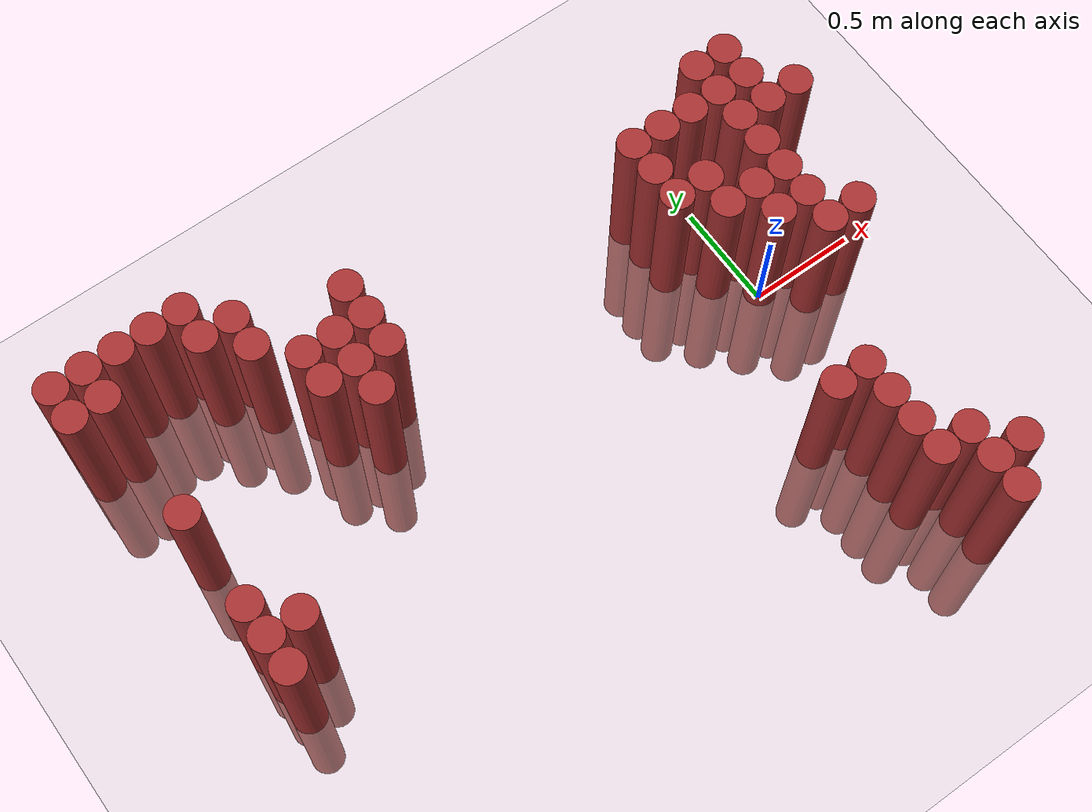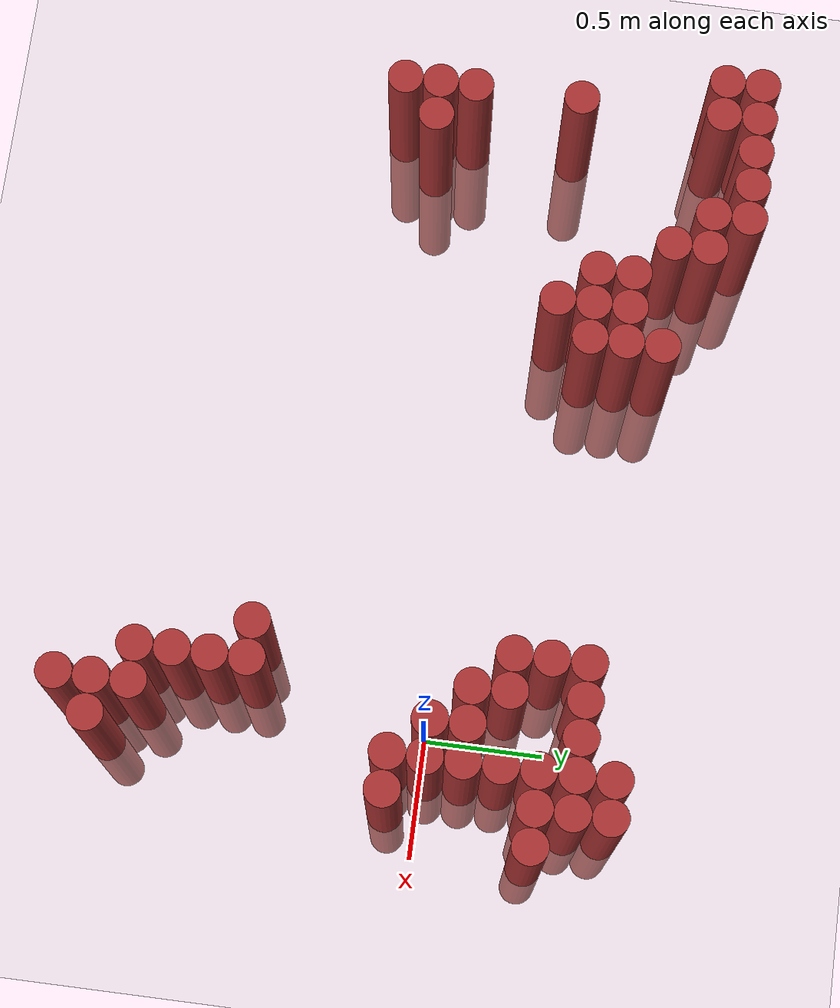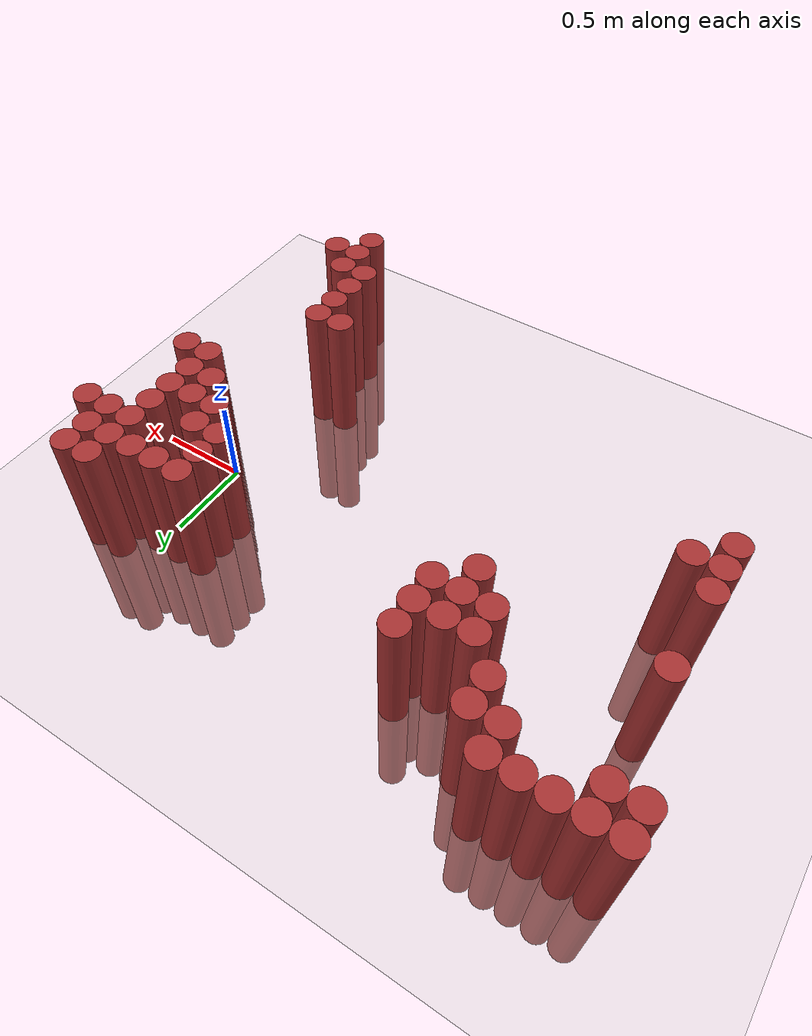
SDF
<sdf version="1.6">
 <world name="default">
  <model name="ground_plane">
   <static>1</static>
   <link name="link">
    <collision name="collision">
     <geometry><plane><normal>0 0 1</normal><size>100 100</size></plane></geometry>
     <surface><friction><ode><mu>100</mu><mu2>50</mu2></ode></friction></surface>
    </collision>
    <visual name="visual">
     <cast_shadows>0</cast_shadows>
     <geometry><plane><normal>0 0 1</normal><size>100 100</size></plane></geometry>
     <material>
      <script><uri>file://media/materials/scripts/gazebo.material</uri><name>Gazebo/Grey</name></script>
     </material>
    </visual>
   </link>
  </model>
  <model name="unit_cylinder_310">
   <static>1</static>
   <pose>-2.825000 0.925000 0.000000 0.000000 0.000000 0.000000</pose>
   <link name="link">
    <inertial>
     <mass>1</mass>
     <inertia><ixx>0.145833</ixx><ixy>0</ixy><ixz>0</ixz><iyy>0.145833</iyy><iyz>0</iyz><izz>0.125</izz></inertia>
    </inertial>
    <collision name="collision">
     <geometry><cylinder><radius>0.075000</radius><length>1.5</length></cylinder></geometry>
    </collision>
    <visual name="visual">
     <geometry><cylinder><radius>0.075000</radius><length>1.5</length></cylinder></geometry>
     <material>
      <ambient>0.648000 0.192000 0.192000 1</ambient>
      <diffuse>0.648000 0.192000 0.192000 1</diffuse>
     </material>
     <material>
      <script><name>Gazebo/Grey</name><uri>file://media/materials/scripts/gazebo.material</uri></script>
     </material>
    </visual>
   </link>
  </model>
  <model name="unit_cylinder_311">
   <static>1</static>
   <pose>-2.825000 1.075000 0.000000 0.000000 0.000000 0.000000</pose>
   <link name="link">
    <inertial>
     <mass>1</mass>
     <inertia><ixx>0.145833</ixx><ixy>0</ixy><ixz>0</ixz><iyy>0.145833</iyy><iyz>0</iyz><izz>0.125</izz></inertia>
    </inertial>
    <collision name="collision">
     <geometry><cylinder><radius>0.075000</radius><length>1.5</length></cylinder></geometry>
    </collision>
    <visual name="visual">
     <geometry><cylinder><radius>0.075000</radius><length>1.5</length></cylinder></geometry>
     <material>
      <ambient>0.648000 0.192000 0.192000 1</ambient>
      <diffuse>0.648000 0.192000 0.192000 1</diffuse>
     </material>
     <material>
      <script><name>Gazebo/Grey</name><uri>file://media/materials/scripts/gazebo.material</uri></script>
     </material>
    </visual>
   </link>
  </model>
  <model name="unit_cylinder_313">
   <static>1</static>
   <pose>-2.675000 -0.425000 0.000000 0.000000 0.000000 0.000000</pose>
   <link name="link">
    <inertial>
     <mass>1</mass>
     <inertia><ixx>0.145833</ixx><ixy>0</ixy><ixz>0</ixz><iyy>0.145833</iyy><iyz>0</iyz><izz>0.125</izz></inertia>
    </inertial>
    <collision name="collision">
     <geometry><cylinder><radius>0.075000</radius><length>1.5</length></cylinder></geometry>
    </collision>
    <visual name="visual">
     <geometry><cylinder><radius>0.075000</radius><length>1.5</length></cylinder></geometry>
     <material>
      <ambient>0.648000 0.192000 0.192000 1</ambient>
      <diffuse>0.648000 0.192000 0.192000 1</diffuse>
     </material>
     <material>
      <script><name>Gazebo/Grey</name><uri>file://media/materials/scripts/gazebo.material</uri></script>
     </material>
    </visual>
   </link>
  </model>
  <model name="unit_cylinder_314">
   <static>1</static>
   <pose>-2.675000 -0.275000 0.000000 0.000000 0.000000 0.000000</pose>
   <link name="link">
    <inertial>
     <mass>1</mass>
     <inertia><ixx>0.145833</ixx><ixy>0</ixy><ixz>0</ixz><iyy>0.145833</iyy><iyz>0</iyz><izz>0.125</izz></inertia>
    </inertial>
    <collision name="collision">
     <geometry><cylinder><radius>0.075000</radius><length>1.5</length></cylinder></geometry>
    </collision>
    <visual name="visual">
     <geometry><cylinder><radius>0.075000</radius><length>1.5</length></cylinder></geometry>
     <material>
      <ambient>0.648000 0.192000 0.192000 1</ambient>
      <diffuse>0.648000 0.192000 0.192000 1</diffuse>
     </material>
     <material>
      <script><name>Gazebo/Grey</name><uri>file://media/materials/scripts/gazebo.material</uri></script>
     </material>
    </visual>
   </link>
  </model>
  <model name="unit_cylinder_315">
   <static>1</static>
   <pose>-2.675000 -0.125000 0.000000 0.000000 0.000000 0.000000</pose>
   <link name="link">
    <inertial>
     <mass>1</mass>
     <inertia><ixx>0.145833</ixx><ixy>0</ixy><ixz>0</ixz><iyy>0.145833</iyy><iyz>0</iyz><izz>0.125</izz></inertia>
    </inertial>
    <collision name="collision">
     <geometry><cylinder><radius>0.075000</radius><length>1.5</length></cylinder></geometry>
    </collision>
    <visual name="visual">
     <geometry><cylinder><radius>0.075000</radius><length>1.5</length></cylinder></geometry>
     <material>
      <ambient>0.648000 0.192000 0.192000 1</ambient>
      <diffuse>0.648000 0.192000 0.192000 1</diffuse>
     </material>
     <material>
      <script><name>Gazebo/Grey</name><uri>file://media/materials/scripts/gazebo.material</uri></script>
     </material>
    </visual>
   </link>
  </model>
  <model name="unit_cylinder_316">
   <static>1</static>
   <pose>-2.675000 0.325000 0.000000 0.000000 0.000000 0.000000</pose>
   <link name="link">
    <inertial>
     <mass>1</mass>
     <inertia><ixx>0.145833</ixx><ixy>0</ixy><ixz>0</ixz><iyy>0.145833</iyy><iyz>0</iyz><izz>0.125</izz></inertia>
    </inertial>
    <collision name="collision">
     <geometry><cylinder><radius>0.075000</radius><length>1.5</length></cylinder></geometry>
    </collision>
    <visual name="visual">
     <geometry><cylinder><radius>0.075000</radius><length>1.5</length></cylinder></geometry>
     <material>
      <ambient>0.648000 0.192000 0.192000 1</ambient>
      <diffuse>0.648000 0.192000 0.192000 1</diffuse>
     </material>
     <material>
      <script><name>Gazebo/Grey</name><uri>file://media/materials/scripts/gazebo.material</uri></script>
     </material>
    </visual>
   </link>
  </model>
  <model name="unit_cylinder_317">
   <static>1</static>
   <pose>-2.675000 0.925000 0.000000 0.000000 0.000000 0.000000</pose>
   <link name="link">
    <inertial>
     <mass>1</mass>
     <inertia><ixx>0.145833</ixx><ixy>0</ixy><ixz>0</ixz><iyy>0.145833</iyy><iyz>0</iyz><izz>0.125</izz></inertia>
    </inertial>
    <collision name="collision">
     <geometry><cylinder><radius>0.075000</radius><length>1.5</length></cylinder></geometry>
    </collision>
    <visual name="visual">
     <geometry><cylinder><radius>0.075000</radius><length>1.5</length></cylinder></geometry>
     <material>
      <ambient>0.648000 0.192000 0.192000 1</ambient>
      <diffuse>0.648000 0.192000 0.192000 1</diffuse>
     </material>
     <material>
      <script><name>Gazebo/Grey</name><uri>file://media/materials/scripts/gazebo.material</uri></script>
     </material>
    </visual>
   </link>
  </model>
  <model name="unit_cylinder_318">
   <static>1</static>
   <pose>-2.675000 1.075000 0.000000 0.000000 0.000000 0.000000</pose>
   <link name="link">
    <inertial>
     <mass>1</mass>
     <inertia><ixx>0.145833</ixx><ixy>0</ixy><ixz>0</ixz><iyy>0.145833</iyy><iyz>0</iyz><izz>0.125</izz></inertia>
    </inertial>
    <collision name="collision">
     <geometry><cylinder><radius>0.075000</radius><length>1.5</length></cylinder></geometry>
    </collision>
    <visual name="visual">
     <geometry><cylinder><radius>0.075000</radius><length>1.5</length></cylinder></geometry>
     <material>
      <ambient>0.648000 0.192000 0.192000 1</ambient>
      <diffuse>0.648000 0.192000 0.192000 1</diffuse>
     </material>
     <material>
      <script><name>Gazebo/Grey</name><uri>file://media/materials/scripts/gazebo.material</uri></script>
     </material>
    </visual>
   </link>
  </model>
  <model name="unit_cylinder_324">
   <static>1</static>
   <pose>-2.525000 -0.275000 0.000000 0.000000 0.000000 0.000000</pose>
   <link name="link">
    <inertial>
     <mass>1</mass>
     <inertia><ixx>0.145833</ixx><ixy>0</ixy><ixz>0</ixz><iyy>0.145833</iyy><iyz>0</iyz><izz>0.125</izz></inertia>
    </inertial>
    <collision name="collision">
     <geometry><cylinder><radius>0.075000</radius><length>1.5</length></cylinder></geometry>
    </collision>
    <visual name="visual">
     <geometry><cylinder><radius>0.075000</radius><length>1.5</length></cylinder></geometry>
     <material>
      <ambient>0.648000 0.192000 0.192000 1</ambient>
      <diffuse>0.648000 0.192000 0.192000 1</diffuse>
     </material>
     <material>
      <script><name>Gazebo/Grey</name><uri>file://media/materials/scripts/gazebo.material</uri></script>
     </material>
    </visual>
   </link>
  </model>
  <model name="unit_cylinder_325">
   <static>1</static>
   <pose>-2.525000 1.075000 0.000000 0.000000 0.000000 0.000000</pose>
   <link name="link">
    <inertial>
     <mass>1</mass>
     <inertia><ixx>0.145833</ixx><ixy>0</ixy><ixz>0</ixz><iyy>0.145833</iyy><iyz>0</iyz><izz>0.125</izz></inertia>
    </inertial>
    <collision name="collision">
     <geometry><cylinder><radius>0.075000</radius><length>1.5</length></cylinder></geometry>
    </collision>
    <visual name="visual">
     <geometry><cylinder><radius>0.075000</radius><length>1.5</length></cylinder></geometry>
     <material>
      <ambient>0.648000 0.192000 0.192000 1</ambient>
      <diffuse>0.648000 0.192000 0.192000 1</diffuse>
     </material>
     <material>
      <script><name>Gazebo/Grey</name><uri>file://media/materials/scripts/gazebo.material</uri></script>
     </material>
    </visual>
   </link>
  </model>
  <model name="unit_cylinder_333">
   <static>1</static>
   <pose>-2.375000 1.075000 0.000000 0.000000 0.000000 0.000000</pose>
   <link name="link">
    <inertial>
     <mass>1</mass>
     <inertia><ixx>0.145833</ixx><ixy>0</ixy><ixz>0</ixz><iyy>0.145833</iyy><iyz>0</iyz><izz>0.125</izz></inertia>
    </inertial>
    <collision name="collision">
     <geometry><cylinder><radius>0.075000</radius><length>1.5</length></cylinder></geometry>
    </collision>
    <visual name="visual">
     <geometry><cylinder><radius>0.075000</radius><length>1.5</length></cylinder></geometry>
     <material>
      <ambient>0.648000 0.192000 0.192000 1</ambient>
      <diffuse>0.648000 0.192000 0.192000 1</diffuse>
     </material>
     <material>
      <script><name>Gazebo/Grey</name><uri>file://media/materials/scripts/gazebo.material</uri></script>
     </material>
    </visual>
   </link>
  </model>
  <model name="unit_cylinder_340">
   <static>1</static>
   <pose>-2.225000 0.925000 0.000000 0.000000 0.000000 0.000000</pose>
   <link name="link">
    <inertial>
     <mass>1</mass>
     <inertia><ixx>0.145833</ixx><ixy>0</ixy><ixz>0</ixz><iyy>0.145833</iyy><iyz>0</iyz><izz>0.125</izz></inertia>
    </inertial>
    <collision name="collision">
     <geometry><cylinder><radius>0.075000</radius><length>1.5</length></cylinder></geometry>
    </collision>
    <visual name="visual">
     <geometry><cylinder><radius>0.075000</radius><length>1.5</length></cylinder></geometry>
     <material>
      <ambient>0.648000 0.192000 0.192000 1</ambient>
      <diffuse>0.648000 0.192000 0.192000 1</diffuse>
     </material>
     <material>
      <script><name>Gazebo/Grey</name><uri>file://media/materials/scripts/gazebo.material</uri></script>
     </material>
    </visual>
   </link>
  </model>
  <model name="unit_cylinder_341">
   <static>1</static>
   <pose>-2.225000 1.075000 0.000000 0.000000 0.000000 0.000000</pose>
   <link name="link">
    <inertial>
     <mass>1</mass>
     <inertia><ixx>0.145833</ixx><ixy>0</ixy><ixz>0</ixz><iyy>0.145833</iyy><iyz>0</iyz><izz>0.125</izz></inertia>
    </inertial>
    <collision name="collision">
     <geometry><cylinder><radius>0.075000</radius><length>1.5</length></cylinder></geometry>
    </collision>
    <visual name="visual">
     <geometry><cylinder><radius>0.075000</radius><length>1.5</length></cylinder></geometry>
     <material>
      <ambient>0.648000 0.192000 0.192000 1</ambient>
      <diffuse>0.648000 0.192000 0.192000 1</diffuse>
     </material>
     <material>
      <script><name>Gazebo/Grey</name><uri>file://media/materials/scripts/gazebo.material</uri></script>
     </material>
    </visual>
   </link>
  </model>
  <model name="unit_cylinder_343">
   <static>1</static>
   <pose>-2.075000 0.775000 0.000000 0.000000 0.000000 0.000000</pose>
   <link name="link">
    <inertial>
     <mass>1</mass>
     <inertia><ixx>0.145833</ixx><ixy>0</ixy><ixz>0</ixz><iyy>0.145833</iyy><iyz>0</iyz><izz>0.125</izz></inertia>
    </inertial>
    <collision name="collision">
     <geometry><cylinder><radius>0.075000</radius><length>1.5</length></cylinder></geometry>
    </collision>
    <visual name="visual">
     <geometry><cylinder><radius>0.075000</radius><length>1.5</length></cylinder></geometry>
     <material>
      <ambient>0.648000 0.192000 0.192000 1</ambient>
      <diffuse>0.648000 0.192000 0.192000 1</diffuse>
     </material>
     <material>
      <script><name>Gazebo/Grey</name><uri>file://media/materials/scripts/gazebo.material</uri></script>
     </material>
    </visual>
   </link>
  </model>
  <model name="unit_cylinder_344">
   <static>1</static>
   <pose>-2.075000 0.925000 0.000000 0.000000 0.000000 0.000000</pose>
   <link name="link">
    <inertial>
     <mass>1</mass>
     <inertia><ixx>0.145833</ixx><ixy>0</ixy><ixz>0</ixz><iyy>0.145833</iyy><iyz>0</iyz><izz>0.125</izz></inertia>
    </inertial>
    <collision name="collision">
     <geometry><cylinder><radius>0.075000</radius><length>1.5</length></cylinder></geometry>
    </collision>
    <visual name="visual">
     <geometry><cylinder><radius>0.075000</radius><length>1.5</length></cylinder></geometry>
     <material>
      <ambient>0.648000 0.192000 0.192000 1</ambient>
      <diffuse>0.648000 0.192000 0.192000 1</diffuse>
     </material>
     <material>
      <script><name>Gazebo/Grey</name><uri>file://media/materials/scripts/gazebo.material</uri></script>
     </material>
    </visual>
   </link>
  </model>
  <model name="unit_cylinder_345">
   <static>1</static>
   <pose>-1.925000 0.475000 0.000000 0.000000 0.000000 0.000000</pose>
   <link name="link">
    <inertial>
     <mass>1</mass>
     <inertia><ixx>0.145833</ixx><ixy>0</ixy><ixz>0</ixz><iyy>0.145833</iyy><iyz>0</iyz><izz>0.125</izz></inertia>
    </inertial>
    <collision name="collision">
     <geometry><cylinder><radius>0.075000</radius><length>1.5</length></cylinder></geometry>
    </collision>
    <visual name="visual">
     <geometry><cylinder><radius>0.075000</radius><length>1.5</length></cylinder></geometry>
     <material>
      <ambient>0.648000 0.192000 0.192000 1</ambient>
      <diffuse>0.648000 0.192000 0.192000 1</diffuse>
     </material>
     <material>
      <script><name>Gazebo/Grey</name><uri>file://media/materials/scripts/gazebo.material</uri></script>
     </material>
    </visual>
   </link>
  </model>
  <model name="unit_cylinder_346">
   <static>1</static>
   <pose>-1.925000 0.625000 0.000000 0.000000 0.000000 0.000000</pose>
   <link name="link">
    <inertial>
     <mass>1</mass>
     <inertia><ixx>0.145833</ixx><ixy>0</ixy><ixz>0</ixz><iyy>0.145833</iyy><iyz>0</iyz><izz>0.125</izz></inertia>
    </inertial>
    <collision name="collision">
     <geometry><cylinder><radius>0.075000</radius><length>1.5</length></cylinder></geometry>
    </collision>
    <visual name="visual">
     <geometry><cylinder><radius>0.075000</radius><length>1.5</length></cylinder></geometry>
     <material>
      <ambient>0.648000 0.192000 0.192000 1</ambient>
      <diffuse>0.648000 0.192000 0.192000 1</diffuse>
     </material>
     <material>
      <script><name>Gazebo/Grey</name><uri>file://media/materials/scripts/gazebo.material</uri></script>
     </material>
    </visual>
   </link>
  </model>
  <model name="unit_cylinder_347">
   <static>1</static>
   <pose>-1.775000 0.325000 0.000000 0.000000 0.000000 0.000000</pose>
   <link name="link">
    <inertial>
     <mass>1</mass>
     <inertia><ixx>0.145833</ixx><ixy>0</ixy><ixz>0</ixz><iyy>0.145833</iyy><iyz>0</iyz><izz>0.125</izz></inertia>
    </inertial>
    <collision name="collision">
     <geometry><cylinder><radius>0.075000</radius><length>1.5</length></cylinder></geometry>
    </collision>
    <visual name="visual">
     <geometry><cylinder><radius>0.075000</radius><length>1.5</length></cylinder></geometry>
     <material>
      <ambient>0.648000 0.192000 0.192000 1</ambient>
      <diffuse>0.648000 0.192000 0.192000 1</diffuse>
     </material>
     <material>
      <script><name>Gazebo/Grey</name><uri>file://media/materials/scripts/gazebo.material</uri></script>
     </material>
    </visual>
   </link>
  </model>
  <model name="unit_cylinder_348">
   <static>1</static>
   <pose>-1.775000 0.475000 0.000000 0.000000 0.000000 0.000000</pose>
   <link name="link">
    <inertial>
     <mass>1</mass>
     <inertia><ixx>0.145833</ixx><ixy>0</ixy><ixz>0</ixz><iyy>0.145833</iyy><iyz>0</iyz><izz>0.125</izz></inertia>
    </inertial>
    <collision name="collision">
     <geometry><cylinder><radius>0.075000</radius><length>1.5</length></cylinder></geometry>
    </collision>
    <visual name="visual">
     <geometry><cylinder><radius>0.075000</radius><length>1.5</length></cylinder></geometry>
     <material>
      <ambient>0.648000 0.192000 0.192000 1</ambient>
      <diffuse>0.648000 0.192000 0.192000 1</diffuse>
     </material>
     <material>
      <script><name>Gazebo/Grey</name><uri>file://media/materials/scripts/gazebo.material</uri></script>
     </material>
    </visual>
   </link>
  </model>
  <model name="unit_cylinder_349">
   <static>1</static>
   <pose>-1.775000 0.625000 0.000000 0.000000 0.000000 0.000000</pose>
   <link name="link">
    <inertial>
     <mass>1</mass>
     <inertia><ixx>0.145833</ixx><ixy>0</ixy><ixz>0</ixz><iyy>0.145833</iyy><iyz>0</iyz><izz>0.125</izz></inertia>
    </inertial>
    <collision name="collision">
     <geometry><cylinder><radius>0.075000</radius><length>1.5</length></cylinder></geometry>
    </collision>
    <visual name="visual">
     <geometry><cylinder><radius>0.075000</radius><length>1.5</length></cylinder></geometry>
     <material>
      <ambient>0.648000 0.192000 0.192000 1</ambient>
      <diffuse>0.648000 0.192000 0.192000 1</diffuse>
     </material>
     <material>
      <script><name>Gazebo/Grey</name><uri>file://media/materials/scripts/gazebo.material</uri></script>
     </material>
    </visual>
   </link>
  </model>
  <model name="unit_cylinder_350">
   <static>1</static>
   <pose>-1.625000 0.475000 0.000000 0.000000 0.000000 0.000000</pose>
   <link name="link">
    <inertial>
     <mass>1</mass>
     <inertia><ixx>0.145833</ixx><ixy>0</ixy><ixz>0</ixz><iyy>0.145833</iyy><iyz>0</iyz><izz>0.125</izz></inertia>
    </inertial>
    <collision name="collision">
     <geometry><cylinder><radius>0.075000</radius><length>1.5</length></cylinder></geometry>
    </collision>
    <visual name="visual">
     <geometry><cylinder><radius>0.075000</radius><length>1.5</length></cylinder></geometry>
     <material>
      <ambient>0.648000 0.192000 0.192000 1</ambient>
      <diffuse>0.648000 0.192000 0.192000 1</diffuse>
     </material>
     <material>
      <script><name>Gazebo/Grey</name><uri>file://media/materials/scripts/gazebo.material</uri></script>
     </material>
    </visual>
   </link>
  </model>
  <model name="unit_cylinder_351">
   <static>1</static>
   <pose>-1.625000 0.625000 0.000000 0.000000 0.000000 0.000000</pose>
   <link name="link">
    <inertial>
     <mass>1</mass>
     <inertia><ixx>0.145833</ixx><ixy>0</ixy><ixz>0</ixz><iyy>0.145833</iyy><iyz>0</iyz><izz>0.125</izz></inertia>
    </inertial>
    <collision name="collision">
     <geometry><cylinder><radius>0.075000</radius><length>1.5</length></cylinder></geometry>
    </collision>
    <visual name="visual">
     <geometry><cylinder><radius>0.075000</radius><length>1.5</length></cylinder></geometry>
     <material>
      <ambient>0.648000 0.192000 0.192000 1</ambient>
      <diffuse>0.648000 0.192000 0.192000 1</diffuse>
     </material>
     <material>
      <script><name>Gazebo/Grey</name><uri>file://media/materials/scripts/gazebo.material</uri></script>
     </material>
    </visual>
   </link>
  </model>
  <model name="unit_cylinder_352">
   <static>1</static>
   <pose>-1.625000 0.775000 0.000000 0.000000 0.000000 0.000000</pose>
   <link name="link">
    <inertial>
     <mass>1</mass>
     <inertia><ixx>0.145833</ixx><ixy>0</ixy><ixz>0</ixz><iyy>0.145833</iyy><iyz>0</iyz><izz>0.125</izz></inertia>
    </inertial>
    <collision name="collision">
     <geometry><cylinder><radius>0.075000</radius><length>1.5</length></cylinder></geometry>
    </collision>
    <visual name="visual">
     <geometry><cylinder><radius>0.075000</radius><length>1.5</length></cylinder></geometry>
     <material>
      <ambient>0.648000 0.192000 0.192000 1</ambient>
      <diffuse>0.648000 0.192000 0.192000 1</diffuse>
     </material>
     <material>
      <script><name>Gazebo/Grey</name><uri>file://media/materials/scripts/gazebo.material</uri></script>
     </material>
    </visual>
   </link>
  </model>
  <model name="unit_cylinder_376">
   <static>1</static>
   <pose>-0.275000 -0.725000 0.000000 0.000000 0.000000 0.000000</pose>
   <link name="link">
    <inertial>
     <mass>1</mass>
     <inertia><ixx>0.145833</ixx><ixy>0</ixy><ixz>0</ixz><iyy>0.145833</iyy><iyz>0</iyz><izz>0.125</izz></inertia>
    </inertial>
    <collision name="collision">
     <geometry><cylinder><radius>0.075000</radius><length>1.5</length></cylinder></geometry>
    </collision>
    <visual name="visual">
     <geometry><cylinder><radius>0.075000</radius><length>1.5</length></cylinder></geometry>
     <material>
      <ambient>0.648000 0.192000 0.192000 1</ambient>
      <diffuse>0.648000 0.192000 0.192000 1</diffuse>
     </material>
     <material>
      <script><name>Gazebo/Grey</name><uri>file://media/materials/scripts/gazebo.material</uri></script>
     </material>
    </visual>
   </link>
  </model>
  <model name="unit_cylinder_377">
   <static>1</static>
   <pose>-0.275000 0.325000 0.000000 0.000000 0.000000 0.000000</pose>
   <link name="link">
    <inertial>
     <mass>1</mass>
     <inertia><ixx>0.145833</ixx><ixy>0</ixy><ixz>0</ixz><iyy>0.145833</iyy><iyz>0</iyz><izz>0.125</izz></inertia>
    </inertial>
    <collision name="collision">
     <geometry><cylinder><radius>0.075000</radius><length>1.5</length></cylinder></geometry>
    </collision>
    <visual name="visual">
     <geometry><cylinder><radius>0.075000</radius><length>1.5</length></cylinder></geometry>
     <material>
      <ambient>0.648000 0.192000 0.192000 1</ambient>
      <diffuse>0.648000 0.192000 0.192000 1</diffuse>
     </material>
     <material>
      <script><name>Gazebo/Grey</name><uri>file://media/materials/scripts/gazebo.material</uri></script>
     </material>
    </visual>
   </link>
  </model>
  <model name="unit_cylinder_378">
   <static>1</static>
   <pose>-0.275000 0.475000 0.000000 0.000000 0.000000 0.000000</pose>
   <link name="link">
    <inertial>
     <mass>1</mass>
     <inertia><ixx>0.145833</ixx><ixy>0</ixy><ixz>0</ixz><iyy>0.145833</iyy><iyz>0</iyz><izz>0.125</izz></inertia>
    </inertial>
    <collision name="collision">
     <geometry><cylinder><radius>0.075000</radius><length>1.5</length></cylinder></geometry>
    </collision>
    <visual name="visual">
     <geometry><cylinder><radius>0.075000</radius><length>1.5</length></cylinder></geometry>
     <material>
      <ambient>0.648000 0.192000 0.192000 1</ambient>
      <diffuse>0.648000 0.192000 0.192000 1</diffuse>
     </material>
     <material>
      <script><name>Gazebo/Grey</name><uri>file://media/materials/scripts/gazebo.material</uri></script>
     </material>
    </visual>
   </link>
  </model>
  <model name="unit_cylinder_379">
   <static>1</static>
   <pose>-0.275000 0.625000 0.000000 0.000000 0.000000 0.000000</pose>
   <link name="link">
    <inertial>
     <mass>1</mass>
     <inertia><ixx>0.145833</ixx><ixy>0</ixy><ixz>0</ixz><iyy>0.145833</iyy><iyz>0</iyz><izz>0.125</izz></inertia>
    </inertial>
    <collision name="collision">
     <geometry><cylinder><radius>0.075000</radius><length>1.5</length></cylinder></geometry>
    </collision>
    <visual name="visual">
     <geometry><cylinder><radius>0.075000</radius><length>1.5</length></cylinder></geometry>
     <material>
      <ambient>0.648000 0.192000 0.192000 1</ambient>
      <diffuse>0.648000 0.192000 0.192000 1</diffuse>
     </material>
     <material>
      <script><name>Gazebo/Grey</name><uri>file://media/materials/scripts/gazebo.material</uri></script>
     </material>
    </visual>
   </link>
  </model>
  <model name="unit_cylinder_387">
   <static>1</static>
   <pose>-0.125000 -1.175000 0.000000 0.000000 0.000000 0.000000</pose>
   <link name="link">
    <inertial>
     <mass>1</mass>
     <inertia><ixx>0.145833</ixx><ixy>0</ixy><ixz>0</ixz><iyy>0.145833</iyy><iyz>0</iyz><izz>0.125</izz></inertia>
    </inertial>
    <collision name="collision">
     <geometry><cylinder><radius>0.075000</radius><length>1.5</length></cylinder></geometry>
    </collision>
    <visual name="visual">
     <geometry><cylinder><radius>0.075000</radius><length>1.5</length></cylinder></geometry>
     <material>
      <ambient>0.648000 0.192000 0.192000 1</ambient>
      <diffuse>0.648000 0.192000 0.192000 1</diffuse>
     </material>
     <material>
      <script><name>Gazebo/Grey</name><uri>file://media/materials/scripts/gazebo.material</uri></script>
     </material>
    </visual>
   </link>
  </model>
  <model name="unit_cylinder_388">
   <static>1</static>
   <pose>-0.125000 -1.025000 0.000000 0.000000 0.000000 0.000000</pose>
   <link name="link">
    <inertial>
     <mass>1</mass>
     <inertia><ixx>0.145833</ixx><ixy>0</ixy><ixz>0</ixz><iyy>0.145833</iyy><iyz>0</iyz><izz>0.125</izz></inertia>
    </inertial>
    <collision name="collision">
     <geometry><cylinder><radius>0.075000</radius><length>1.5</length></cylinder></geometry>
    </collision>
    <visual name="visual">
     <geometry><cylinder><radius>0.075000</radius><length>1.5</length></cylinder></geometry>
     <material>
      <ambient>0.648000 0.192000 0.192000 1</ambient>
      <diffuse>0.648000 0.192000 0.192000 1</diffuse>
     </material>
     <material>
      <script><name>Gazebo/Grey</name><uri>file://media/materials/scripts/gazebo.material</uri></script>
     </material>
    </visual>
   </link>
  </model>
  <model name="unit_cylinder_389">
   <static>1</static>
   <pose>-0.125000 -0.875000 0.000000 0.000000 0.000000 0.000000</pose>
   <link name="link">
    <inertial>
     <mass>1</mass>
     <inertia><ixx>0.145833</ixx><ixy>0</ixy><ixz>0</ixz><iyy>0.145833</iyy><iyz>0</iyz><izz>0.125</izz></inertia>
    </inertial>
    <collision name="collision">
     <geometry><cylinder><radius>0.075000</radius><length>1.5</length></cylinder></geometry>
    </collision>
    <visual name="visual">
     <geometry><cylinder><radius>0.075000</radius><length>1.5</length></cylinder></geometry>
     <material>
      <ambient>0.648000 0.192000 0.192000 1</ambient>
      <diffuse>0.648000 0.192000 0.192000 1</diffuse>
     </material>
     <material>
      <script><name>Gazebo/Grey</name><uri>file://media/materials/scripts/gazebo.material</uri></script>
     </material>
    </visual>
   </link>
  </model>
  <model name="unit_cylinder_390">
   <static>1</static>
   <pose>-0.125000 -0.725000 0.000000 0.000000 0.000000 0.000000</pose>
   <link name="link">
    <inertial>
     <mass>1</mass>
     <inertia><ixx>0.145833</ixx><ixy>0</ixy><ixz>0</ixz><iyy>0.145833</iyy><iyz>0</iyz><izz>0.125</izz></inertia>
    </inertial>
    <collision name="collision">
     <geometry><cylinder><radius>0.075000</radius><length>1.5</length></cylinder></geometry>
    </collision>
    <visual name="visual">
     <geometry><cylinder><radius>0.075000</radius><length>1.5</length></cylinder></geometry>
     <material>
      <ambient>0.648000 0.192000 0.192000 1</ambient>
      <diffuse>0.648000 0.192000 0.192000 1</diffuse>
     </material>
     <material>
      <script><name>Gazebo/Grey</name><uri>file://media/materials/scripts/gazebo.material</uri></script>
     </material>
    </visual>
   </link>
  </model>
  <model name="unit_cylinder_391">
   <static>1</static>
   <pose>-0.125000 0.175000 0.000000 0.000000 0.000000 0.000000</pose>
   <link name="link">
    <inertial>
     <mass>1</mass>
     <inertia><ixx>0.145833</ixx><ixy>0</ixy><ixz>0</ixz><iyy>0.145833</iyy><iyz>0</iyz><izz>0.125</izz></inertia>
    </inertial>
    <collision name="collision">
     <geometry><cylinder><radius>0.075000</radius><length>1.5</length></cylinder></geometry>
    </collision>
    <visual name="visual">
     <geometry><cylinder><radius>0.075000</radius><length>1.5</length></cylinder></geometry>
     <material>
      <ambient>0.648000 0.192000 0.192000 1</ambient>
      <diffuse>0.648000 0.192000 0.192000 1</diffuse>
     </material>
     <material>
      <script><name>Gazebo/Grey</name><uri>file://media/materials/scripts/gazebo.material</uri></script>
     </material>
    </visual>
   </link>
  </model>
  <model name="unit_cylinder_392">
   <static>1</static>
   <pose>-0.125000 0.325000 0.000000 0.000000 0.000000 0.000000</pose>
   <link name="link">
    <inertial>
     <mass>1</mass>
     <inertia><ixx>0.145833</ixx><ixy>0</ixy><ixz>0</ixz><iyy>0.145833</iyy><iyz>0</iyz><izz>0.125</izz></inertia>
    </inertial>
    <collision name="collision">
     <geometry><cylinder><radius>0.075000</radius><length>1.5</length></cylinder></geometry>
    </collision>
    <visual name="visual">
     <geometry><cylinder><radius>0.075000</radius><length>1.5</length></cylinder></geometry>
     <material>
      <ambient>0.648000 0.192000 0.192000 1</ambient>
      <diffuse>0.648000 0.192000 0.192000 1</diffuse>
     </material>
     <material>
      <script><name>Gazebo/Grey</name><uri>file://media/materials/scripts/gazebo.material</uri></script>
     </material>
    </visual>
   </link>
  </model>
  <model name="unit_cylinder_393">
   <static>1</static>
   <pose>-0.125000 0.625000 0.000000 0.000000 0.000000 0.000000</pose>
   <link name="link">
    <inertial>
     <mass>1</mass>
     <inertia><ixx>0.145833</ixx><ixy>0</ixy><ixz>0</ixz><iyy>0.145833</iyy><iyz>0</iyz><izz>0.125</izz></inertia>
    </inertial>
    <collision name="collision">
     <geometry><cylinder><radius>0.075000</radius><length>1.5</length></cylinder></geometry>
    </collision>
    <visual name="visual">
     <geometry><cylinder><radius>0.075000</radius><length>1.5</length></cylinder></geometry>
     <material>
      <ambient>0.648000 0.192000 0.192000 1</ambient>
      <diffuse>0.648000 0.192000 0.192000 1</diffuse>
     </material>
     <material>
      <script><name>Gazebo/Grey</name><uri>file://media/materials/scripts/gazebo.material</uri></script>
     </material>
    </visual>
   </link>
  </model>
  <model name="unit_cylinder_397">
   <static>1</static>
   <pose>0.025000 -1.475000 0.000000 0.000000 0.000000 0.000000</pose>
   <link name="link">
    <inertial>
     <mass>1</mass>
     <inertia><ixx>0.145833</ixx><ixy>0</ixy><ixz>0</ixz><iyy>0.145833</iyy><iyz>0</iyz><izz>0.125</izz></inertia>
    </inertial>
    <collision name="collision">
     <geometry><cylinder><radius>0.075000</radius><length>1.5</length></cylinder></geometry>
    </collision>
    <visual name="visual">
     <geometry><cylinder><radius>0.075000</radius><length>1.5</length></cylinder></geometry>
     <material>
      <ambient>0.648000 0.192000 0.192000 1</ambient>
      <diffuse>0.648000 0.192000 0.192000 1</diffuse>
     </material>
     <material>
      <script><name>Gazebo/Grey</name><uri>file://media/materials/scripts/gazebo.material</uri></script>
     </material>
    </visual>
   </link>
  </model>
  <model name="unit_cylinder_398">
   <static>1</static>
   <pose>0.025000 -1.325000 0.000000 0.000000 0.000000 0.000000</pose>
   <link name="link">
    <inertial>
     <mass>1</mass>
     <inertia><ixx>0.145833</ixx><ixy>0</ixy><ixz>0</ixz><iyy>0.145833</iyy><iyz>0</iyz><izz>0.125</izz></inertia>
    </inertial>
    <collision name="collision">
     <geometry><cylinder><radius>0.075000</radius><length>1.5</length></cylinder></geometry>
    </collision>
    <visual name="visual">
     <geometry><cylinder><radius>0.075000</radius><length>1.5</length></cylinder></geometry>
     <material>
      <ambient>0.648000 0.192000 0.192000 1</ambient>
      <diffuse>0.648000 0.192000 0.192000 1</diffuse>
     </material>
     <material>
      <script><name>Gazebo/Grey</name><uri>file://media/materials/scripts/gazebo.material</uri></script>
     </material>
    </visual>
   </link>
  </model>
  <model name="unit_cylinder_399">
   <static>1</static>
   <pose>0.025000 -1.175000 0.000000 0.000000 0.000000 0.000000</pose>
   <link name="link">
    <inertial>
     <mass>1</mass>
     <inertia><ixx>0.145833</ixx><ixy>0</ixy><ixz>0</ixz><iyy>0.145833</iyy><iyz>0</iyz><izz>0.125</izz></inertia>
    </inertial>
    <collision name="collision">
     <geometry><cylinder><radius>0.075000</radius><length>1.5</length></cylinder></geometry>
    </collision>
    <visual name="visual">
     <geometry><cylinder><radius>0.075000</radius><length>1.5</length></cylinder></geometry>
     <material>
      <ambient>0.648000 0.192000 0.192000 1</ambient>
      <diffuse>0.648000 0.192000 0.192000 1</diffuse>
     </material>
     <material>
      <script><name>Gazebo/Grey</name><uri>file://media/materials/scripts/gazebo.material</uri></script>
     </material>
    </visual>
   </link>
  </model>
  <model name="unit_cylinder_400">
   <static>1</static>
   <pose>0.025000 0.025000 0.000000 0.000000 0.000000 0.000000</pose>
   <link name="link">
    <inertial>
     <mass>1</mass>
     <inertia><ixx>0.145833</ixx><ixy>0</ixy><ixz>0</ixz><iyy>0.145833</iyy><iyz>0</iyz><izz>0.125</izz></inertia>
    </inertial>
    <collision name="collision">
     <geometry><cylinder><radius>0.075000</radius><length>1.5</length></cylinder></geometry>
    </collision>
    <visual name="visual">
     <geometry><cylinder><radius>0.075000</radius><length>1.5</length></cylinder></geometry>
     <material>
      <ambient>0.648000 0.192000 0.192000 1</ambient>
      <diffuse>0.648000 0.192000 0.192000 1</diffuse>
     </material>
     <material>
      <script><name>Gazebo/Grey</name><uri>file://media/materials/scripts/gazebo.material</uri></script>
     </material>
    </visual>
   </link>
  </model>
  <model name="unit_cylinder_401">
   <static>1</static>
   <pose>0.025000 0.175000 0.000000 0.000000 0.000000 0.000000</pose>
   <link name="link">
    <inertial>
     <mass>1</mass>
     <inertia><ixx>0.145833</ixx><ixy>0</ixy><ixz>0</ixz><iyy>0.145833</iyy><iyz>0</iyz><izz>0.125</izz></inertia>
    </inertial>
    <collision name="collision">
     <geometry><cylinder><radius>0.075000</radius><length>1.5</length></cylinder></geometry>
    </collision>
    <visual name="visual">
     <geometry><cylinder><radius>0.075000</radius><length>1.5</length></cylinder></geometry>
     <material>
      <ambient>0.648000 0.192000 0.192000 1</ambient>
      <diffuse>0.648000 0.192000 0.192000 1</diffuse>
     </material>
     <material>
      <script><name>Gazebo/Grey</name><uri>file://media/materials/scripts/gazebo.material</uri></script>
     </material>
    </visual>
   </link>
  </model>
  <model name="unit_cylinder_402">
   <static>1</static>
   <pose>0.025000 0.625000 0.000000 0.000000 0.000000 0.000000</pose>
   <link name="link">
    <inertial>
     <mass>1</mass>
     <inertia><ixx>0.145833</ixx><ixy>0</ixy><ixz>0</ixz><iyy>0.145833</iyy><iyz>0</iyz><izz>0.125</izz></inertia>
    </inertial>
    <collision name="collision">
     <geometry><cylinder><radius>0.075000</radius><length>1.5</length></cylinder></geometry>
    </collision>
    <visual name="visual">
     <geometry><cylinder><radius>0.075000</radius><length>1.5</length></cylinder></geometry>
     <material>
      <ambient>0.648000 0.192000 0.192000 1</ambient>
      <diffuse>0.648000 0.192000 0.192000 1</diffuse>
     </material>
     <material>
      <script><name>Gazebo/Grey</name><uri>file://media/materials/scripts/gazebo.material</uri></script>
     </material>
    </visual>
   </link>
  </model>
  <model name="unit_cylinder_410">
   <static>1</static>
   <pose>0.175000 -1.325000 0.000000 0.000000 0.000000 0.000000</pose>
   <link name="link">
    <inertial>
     <mass>1</mass>
     <inertia><ixx>0.145833</ixx><ixy>0</ixy><ixz>0</ixz><iyy>0.145833</iyy><iyz>0</iyz><izz>0.125</izz></inertia>
    </inertial>
    <collision name="collision">
     <geometry><cylinder><radius>0.075000</radius><length>1.5</length></cylinder></geometry>
    </collision>
    <visual name="visual">
     <geometry><cylinder><radius>0.075000</radius><length>1.5</length></cylinder></geometry>
     <material>
      <ambient>0.648000 0.192000 0.192000 1</ambient>
      <diffuse>0.648000 0.192000 0.192000 1</diffuse>
     </material>
     <material>
      <script><name>Gazebo/Grey</name><uri>file://media/materials/scripts/gazebo.material</uri></script>
     </material>
    </visual>
   </link>
  </model>
  <model name="unit_cylinder_411">
   <static>1</static>
   <pose>0.175000 -0.125000 0.000000 0.000000 0.000000 0.000000</pose>
   <link name="link">
    <inertial>
     <mass>1</mass>
     <inertia><ixx>0.145833</ixx><ixy>0</ixy><ixz>0</ixz><iyy>0.145833</iyy><iyz>0</iyz><izz>0.125</izz></inertia>
    </inertial>
    <collision name="collision">
     <geometry><cylinder><radius>0.075000</radius><length>1.5</length></cylinder></geometry>
    </collision>
    <visual name="visual">
     <geometry><cylinder><radius>0.075000</radius><length>1.5</length></cylinder></geometry>
     <material>
      <ambient>0.648000 0.192000 0.192000 1</ambient>
      <diffuse>0.648000 0.192000 0.192000 1</diffuse>
     </material>
     <material>
      <script><name>Gazebo/Grey</name><uri>file://media/materials/scripts/gazebo.material</uri></script>
     </material>
    </visual>
   </link>
  </model>
  <model name="unit_cylinder_412">
   <static>1</static>
   <pose>0.175000 0.025000 0.000000 0.000000 0.000000 0.000000</pose>
   <link name="link">
    <inertial>
     <mass>1</mass>
     <inertia><ixx>0.145833</ixx><ixy>0</ixy><ixz>0</ixz><iyy>0.145833</iyy><iyz>0</iyz><izz>0.125</izz></inertia>
    </inertial>
    <collision name="collision">
     <geometry><cylinder><radius>0.075000</radius><length>1.5</length></cylinder></geometry>
    </collision>
    <visual name="visual">
     <geometry><cylinder><radius>0.075000</radius><length>1.5</length></cylinder></geometry>
     <material>
      <ambient>0.648000 0.192000 0.192000 1</ambient>
      <diffuse>0.648000 0.192000 0.192000 1</diffuse>
     </material>
     <material>
      <script><name>Gazebo/Grey</name><uri>file://media/materials/scripts/gazebo.material</uri></script>
     </material>
    </visual>
   </link>
  </model>
  <model name="unit_cylinder_413">
   <static>1</static>
   <pose>0.175000 0.175000 0.000000 0.000000 0.000000 0.000000</pose>
   <link name="link">
    <inertial>
     <mass>1</mass>
     <inertia><ixx>0.145833</ixx><ixy>0</ixy><ixz>0</ixz><iyy>0.145833</iyy><iyz>0</iyz><izz>0.125</izz></inertia>
    </inertial>
    <collision name="collision">
     <geometry><cylinder><radius>0.075000</radius><length>1.5</length></cylinder></geometry>
    </collision>
    <visual name="visual">
     <geometry><cylinder><radius>0.075000</radius><length>1.5</length></cylinder></geometry>
     <material>
      <ambient>0.648000 0.192000 0.192000 1</ambient>
      <diffuse>0.648000 0.192000 0.192000 1</diffuse>
     </material>
     <material>
      <script><name>Gazebo/Grey</name><uri>file://media/materials/scripts/gazebo.material</uri></script>
     </material>
    </visual>
   </link>
  </model>
  <model name="unit_cylinder_414">
   <static>1</static>
   <pose>0.175000 0.325000 0.000000 0.000000 0.000000 0.000000</pose>
   <link name="link">
    <inertial>
     <mass>1</mass>
     <inertia><ixx>0.145833</ixx><ixy>0</ixy><ixz>0</ixz><iyy>0.145833</iyy><iyz>0</iyz><izz>0.125</izz></inertia>
    </inertial>
    <collision name="collision">
     <geometry><cylinder><radius>0.075000</radius><length>1.5</length></cylinder></geometry>
    </collision>
    <visual name="visual">
     <geometry><cylinder><radius>0.075000</radius><length>1.5</length></cylinder></geometry>
     <material>
      <ambient>0.648000 0.192000 0.192000 1</ambient>
      <diffuse>0.648000 0.192000 0.192000 1</diffuse>
     </material>
     <material>
      <script><name>Gazebo/Grey</name><uri>file://media/materials/scripts/gazebo.material</uri></script>
     </material>
    </visual>
   </link>
  </model>
  <model name="unit_cylinder_415">
   <static>1</static>
   <pose>0.175000 0.475000 0.000000 0.000000 0.000000 0.000000</pose>
   <link name="link">
    <inertial>
     <mass>1</mass>
     <inertia><ixx>0.145833</ixx><ixy>0</ixy><ixz>0</ixz><iyy>0.145833</iyy><iyz>0</iyz><izz>0.125</izz></inertia>
    </inertial>
    <collision name="collision">
     <geometry><cylinder><radius>0.075000</radius><length>1.5</length></cylinder></geometry>
    </collision>
    <visual name="visual">
     <geometry><cylinder><radius>0.075000</radius><length>1.5</length></cylinder></geometry>
     <material>
      <ambient>0.648000 0.192000 0.192000 1</ambient>
      <diffuse>0.648000 0.192000 0.192000 1</diffuse>
     </material>
     <material>
      <script><name>Gazebo/Grey</name><uri>file://media/materials/scripts/gazebo.material</uri></script>
     </material>
    </visual>
   </link>
  </model>
  <model name="unit_cylinder_416">
   <static>1</static>
   <pose>0.175000 0.625000 0.000000 0.000000 0.000000 0.000000</pose>
   <link name="link">
    <inertial>
     <mass>1</mass>
     <inertia><ixx>0.145833</ixx><ixy>0</ixy><ixz>0</ixz><iyy>0.145833</iyy><iyz>0</iyz><izz>0.125</izz></inertia>
    </inertial>
    <collision name="collision">
     <geometry><cylinder><radius>0.075000</radius><length>1.5</length></cylinder></geometry>
    </collision>
    <visual name="visual">
     <geometry><cylinder><radius>0.075000</radius><length>1.5</length></cylinder></geometry>
     <material>
      <ambient>0.648000 0.192000 0.192000 1</ambient>
      <diffuse>0.648000 0.192000 0.192000 1</diffuse>
     </material>
     <material>
      <script><name>Gazebo/Grey</name><uri>file://media/materials/scripts/gazebo.material</uri></script>
     </material>
    </visual>
   </link>
  </model>
  <model name="unit_cylinder_417">
   <static>1</static>
   <pose>0.175000 0.775000 0.000000 0.000000 0.000000 0.000000</pose>
   <link name="link">
    <inertial>
     <mass>1</mass>
     <inertia><ixx>0.145833</ixx><ixy>0</ixy><ixz>0</ixz><iyy>0.145833</iyy><iyz>0</iyz><izz>0.125</izz></inertia>
    </inertial>
    <collision name="collision">
     <geometry><cylinder><radius>0.075000</radius><length>1.5</length></cylinder></geometry>
    </collision>
    <visual name="visual">
     <geometry><cylinder><radius>0.075000</radius><length>1.5</length></cylinder></geometry>
     <material>
      <ambient>0.648000 0.192000 0.192000 1</ambient>
      <diffuse>0.648000 0.192000 0.192000 1</diffuse>
     </material>
     <material>
      <script><name>Gazebo/Grey</name><uri>file://media/materials/scripts/gazebo.material</uri></script>
     </material>
    </visual>
   </link>
  </model>
  <model name="unit_cylinder_424">
   <static>1</static>
   <pose>0.325000 -0.125000 0.000000 0.000000 0.000000 0.000000</pose>
   <link name="link">
    <inertial>
     <mass>1</mass>
     <inertia><ixx>0.145833</ixx><ixy>0</ixy><ixz>0</ixz><iyy>0.145833</iyy><iyz>0</iyz><izz>0.125</izz></inertia>
    </inertial>
    <collision name="collision">
     <geometry><cylinder><radius>0.075000</radius><length>1.5</length></cylinder></geometry>
    </collision>
    <visual name="visual">
     <geometry><cylinder><radius>0.075000</radius><length>1.5</length></cylinder></geometry>
     <material>
      <ambient>0.648000 0.192000 0.192000 1</ambient>
      <diffuse>0.648000 0.192000 0.192000 1</diffuse>
     </material>
     <material>
      <script><name>Gazebo/Grey</name><uri>file://media/materials/scripts/gazebo.material</uri></script>
     </material>
    </visual>
   </link>
  </model>
  <model name="unit_cylinder_425">
   <static>1</static>
   <pose>0.325000 0.475000 0.000000 0.000000 0.000000 0.000000</pose>
   <link name="link">
    <inertial>
     <mass>1</mass>
     <inertia><ixx>0.145833</ixx><ixy>0</ixy><ixz>0</ixz><iyy>0.145833</iyy><iyz>0</iyz><izz>0.125</izz></inertia>
    </inertial>
    <collision name="collision">
     <geometry><cylinder><radius>0.075000</radius><length>1.5</length></cylinder></geometry>
    </collision>
    <visual name="visual">
     <geometry><cylinder><radius>0.075000</radius><length>1.5</length></cylinder></geometry>
     <material>
      <ambient>0.648000 0.192000 0.192000 1</ambient>
      <diffuse>0.648000 0.192000 0.192000 1</diffuse>
     </material>
     <material>
      <script><name>Gazebo/Grey</name><uri>file://media/materials/scripts/gazebo.material</uri></script>
     </material>
    </visual>
   </link>
  </model>
  <model name="unit_cylinder_426">
   <static>1</static>
   <pose>0.325000 0.625000 0.000000 0.000000 0.000000 0.000000</pose>
   <link name="link">
    <inertial>
     <mass>1</mass>
     <inertia><ixx>0.145833</ixx><ixy>0</ixy><ixz>0</ixz><iyy>0.145833</iyy><iyz>0</iyz><izz>0.125</izz></inertia>
    </inertial>
    <collision name="collision">
     <geometry><cylinder><radius>0.075000</radius><length>1.5</length></cylinder></geometry>
    </collision>
    <visual name="visual">
     <geometry><cylinder><radius>0.075000</radius><length>1.5</length></cylinder></geometry>
     <material>
      <ambient>0.648000 0.192000 0.192000 1</ambient>
      <diffuse>0.648000 0.192000 0.192000 1</diffuse>
     </material>
     <material>
      <script><name>Gazebo/Grey</name><uri>file://media/materials/scripts/gazebo.material</uri></script>
     </material>
    </visual>
   </link>
  </model>
  <model name="unit_cylinder_427">
   <static>1</static>
   <pose>0.325000 0.775000 0.000000 0.000000 0.000000 0.000000</pose>
   <link name="link">
    <inertial>
     <mass>1</mass>
     <inertia><ixx>0.145833</ixx><ixy>0</ixy><ixz>0</ixz><iyy>0.145833</iyy><iyz>0</iyz><izz>0.125</izz></inertia>
    </inertial>
    <collision name="collision">
     <geometry><cylinder><radius>0.075000</radius><length>1.5</length></cylinder></geometry>
    </collision>
    <visual name="visual">
     <geometry><cylinder><radius>0.075000</radius><length>1.5</length></cylinder></geometry>
     <material>
      <ambient>0.648000 0.192000 0.192000 1</ambient>
      <diffuse>0.648000 0.192000 0.192000 1</diffuse>
     </material>
     <material>
      <script><name>Gazebo/Grey</name><uri>file://media/materials/scripts/gazebo.material</uri></script>
     </material>
    </visual>
   </link>
  </model>
  <model name="unit_cylinder_435">
   <static>1</static>
   <pose>0.475000 0.475000 0.000000 0.000000 0.000000 0.000000</pose>
   <link name="link">
    <inertial>
     <mass>1</mass>
     <inertia><ixx>0.145833</ixx><ixy>0</ixy><ixz>0</ixz><iyy>0.145833</iyy><iyz>0</iyz><izz>0.125</izz></inertia>
    </inertial>
    <collision name="collision">
     <geometry><cylinder><radius>0.075000</radius><length>1.5</length></cylinder></geometry>
    </collision>
    <visual name="visual">
     <geometry><cylinder><radius>0.075000</radius><length>1.5</length></cylinder></geometry>
     <material>
      <ambient>0.648000 0.192000 0.192000 1</ambient>
      <diffuse>0.648000 0.192000 0.192000 1</diffuse>
     </material>
     <material>
      <script><name>Gazebo/Grey</name><uri>file://media/materials/scripts/gazebo.material</uri></script>
     </material>
    </visual>
   </link>
  </model>
 </world>
</sdf>
